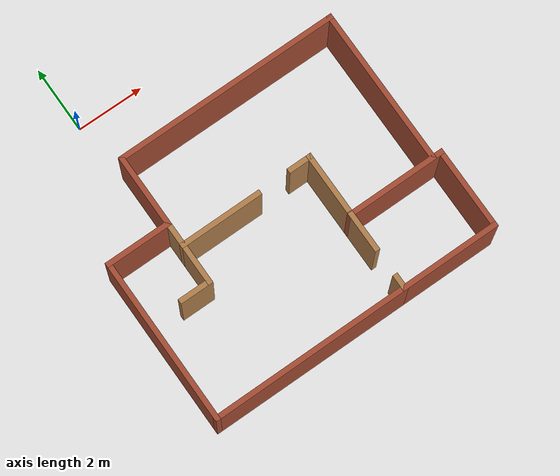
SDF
<?xml version='1.0'?>
<sdf version='1.6'>
  <model name='Room3'>
    <pose frame=''>2.75 -5.335 0 0 -0 0</pose>
    <link name='Wall_0'>
      <collision name='Wall_0_Collision'>
        <geometry>
          <box>
            <size>2.5 0.15 2.5</size>
          </box>
        </geometry>
        <pose frame=''>0 0 1.25 0 -0 0</pose>
      </collision>
      <visual name='Wall_0_Visual'>
        <pose frame=''>0 0 1.25 0 -0 0</pose>
        <geometry>
          <box>
            <size>2.5 0.15 2.5</size>
          </box>
        </geometry>
        <material>
          <script>
            <uri>file://media/materials/scripts/gazebo.material</uri>
            <name>Gazebo/Bricks</name>
          </script>
          <ambient>1 1 1 1</ambient>
        </material>
        <meta>
          <layer>0</layer>
        </meta>
      </visual>
      <pose frame=''>4.35 -2.3 0 0 -0 1.5708</pose>
    </link>
    <link name='Wall_1'>
      <collision name='Wall_1_Collision'>
        <geometry>
          <box>
            <size>3 0.15 2.5</size>
          </box>
        </geometry>
        <pose frame=''>0 0 1.25 0 -0 0</pose>
      </collision>
      <visual name='Wall_1_Visual'>
        <pose frame=''>0 0 1.25 0 -0 0</pose>
        <geometry>
          <box>
            <size>3 0.15 2.5</size>
          </box>
        </geometry>
        <material>
          <script>
            <uri>file://media/materials/scripts/gazebo.material</uri>
            <name>Gazebo/Bricks</name>
          </script>
          <ambient>1 1 1 1</ambient>
        </material>
        <meta>
          <layer>0</layer>
        </meta>
      </visual>
      <pose frame=''>2.925 -1.125 0 0 -0 3.14159</pose>
    </link>
    <link name='Wall_10'>
      <collision name='Wall_10_Collision'>
        <geometry>
          <box>
            <size>5 0.15 2.5</size>
          </box>
        </geometry>
        <pose frame=''>0 0 1.25 0 -0 0</pose>
      </collision>
      <visual name='Wall_10_Visual'>
        <pose frame=''>0 0 1.25 0 -0 0</pose>
        <geometry>
          <box>
            <size>5 0.15 2.5</size>
          </box>
        </geometry>
        <material>
          <script>
            <uri>file://media/materials/scripts/gazebo.material</uri>
            <name>Gazebo/Bricks</name>
          </script>
          <ambient>1 1 1 1</ambient>
        </material>
        <meta>
          <layer>0</layer>
        </meta>
      </visual>
      <pose frame=''>-4.35 -1.05 0 0 -0 1.5708</pose>
    </link>
    <link name='Wall_11'>
      <collision name='Wall_11_Collision'>
        <geometry>
          <box>
            <size>2 0.15 2.5</size>
          </box>
        </geometry>
        <pose frame=''>0 0 1.25 0 -0 0</pose>
      </collision>
      <visual name='Wall_11_Visual'>
        <pose frame=''>0 0 1.25 0 -0 0</pose>
        <geometry>
          <box>
            <size>2 0.15 2.5</size>
          </box>
        </geometry>
        <material>
          <script>
            <uri>file://media/materials/scripts/gazebo.material</uri>
            <name>Gazebo/Bricks</name>
          </script>
          <ambient>1 1 1 1</ambient>
        </material>
        <meta>
          <layer>0</layer>
        </meta>
      </visual>
      <pose frame=''>-3.425 1.375 0 0 -0 0</pose>
    </link>
    <link name='Wall_12'>
      <collision name='Wall_12_Collision'>
        <geometry>
          <box>
            <size>2 0.15 2.5</size>
          </box>
        </geometry>
        <pose frame=''>0 0 1.25 0 -0 0</pose>
      </collision>
      <visual name='Wall_12_Visual'>
        <pose frame=''>0 0 1.25 0 -0 0</pose>
        <geometry>
          <box>
            <size>2 0.15 2.5</size>
          </box>
        </geometry>
        <material>
          <script>
            <uri>file://media/materials/scripts/gazebo.material</uri>
            <name>Gazebo/Wood</name>
          </script>
          <ambient>1 1 1 1</ambient>
        </material>
        <meta>
          <layer>0</layer>
        </meta>
      </visual>
      <pose frame=''>-2.5 0.45 0 0 -0 -1.5708</pose>
    </link>
    <link name='Wall_13'>
      <collision name='Wall_13_Collision'>
        <geometry>
          <box>
            <size>1 0.15 2.5</size>
          </box>
        </geometry>
        <pose frame=''>0 0 1.25 0 -0 0</pose>
      </collision>
      <visual name='Wall_13_Visual'>
        <pose frame=''>0 0 1.25 0 -0 0</pose>
        <geometry>
          <box>
            <size>1 0.15 2.5</size>
          </box>
        </geometry>
        <material>
          <script>
            <uri>file://media/materials/scripts/gazebo.material</uri>
            <name>Gazebo/Wood</name>
          </script>
          <ambient>1 1 1 1</ambient>
        </material>
        <meta>
          <layer>0</layer>
        </meta>
      </visual>
      <pose frame=''>-2.925 -0.475 0 0 -0 3.14159</pose>
    </link>
    <link name='Wall_15'>
      <collision name='Wall_15_Collision'>
        <geometry>
          <box>
            <size>2.5 0.15 2.5</size>
          </box>
        </geometry>
        <pose frame=''>0 0 1.25 0 -0 0</pose>
      </collision>
      <visual name='Wall_15_Visual'>
        <pose frame=''>0 0 1.25 0 -0 0</pose>
        <geometry>
          <box>
            <size>2.5 0.15 2.5</size>
          </box>
        </geometry>
        <material>
          <script>
            <uri>file://media/materials/scripts/gazebo.material</uri>
            <name>Gazebo/Wood</name>
          </script>
          <ambient>1 1 1 1</ambient>
        </material>
        <meta>
          <layer>0</layer>
        </meta>
      </visual>
      <pose frame=''>-1.325 0.695 0 0 -0 0</pose>
    </link>
    <link name='Wall_20'>
      <collision name='Wall_20_Collision'>
        <geometry>
          <box>
            <size>2 0.15 2.5</size>
          </box>
        </geometry>
        <pose frame=''>0 0 1.25 0 -0 0</pose>
      </collision>
      <visual name='Wall_20_Visual'>
        <pose frame=''>0 0 1.25 0 -0 0</pose>
        <geometry>
          <box>
            <size>2 0.15 2.5</size>
          </box>
        </geometry>
        <material>
          <script>
            <uri>file://media/materials/scripts/gazebo.material</uri>
            <name>Gazebo/Wood</name>
          </script>
          <ambient>1 1 1 1</ambient>
        </material>
        <meta>
          <layer>0</layer>
        </meta>
      </visual>
      <pose frame=''>1.5 -0.2 0 0 -0 1.5708</pose>
    </link>
    <link name='Wall_21'>
      <collision name='Wall_21_Collision'>
        <geometry>
          <box>
            <size>0.75 0.15 2.5</size>
          </box>
        </geometry>
        <pose frame=''>0 0 1.25 0 -0 0</pose>
      </collision>
      <visual name='Wall_21_Visual'>
        <pose frame=''>0 0 1.25 0 -0 0</pose>
        <geometry>
          <box>
            <size>0.75 0.15 2.5</size>
          </box>
        </geometry>
        <material>
          <script>
            <uri>file://media/materials/scripts/gazebo.material</uri>
            <name>Gazebo/Wood</name>
          </script>
          <ambient>1 1 1 1</ambient>
        </material>
        <meta>
          <layer>0</layer>
        </meta>
      </visual>
      <pose frame=''>1.2 0.725 0 0 -0 3.14159</pose>
    </link>
    <link name='Wall_23'>
      <collision name='Wall_23_Collision'>
        <geometry>
          <box>
            <size>2.25 0.15 2.5</size>
          </box>
        </geometry>
        <pose frame=''>0 0 1.25 0 -0 0</pose>
      </collision>
      <visual name='Wall_23_Visual'>
        <pose frame=''>0 0 1.25 0 -0 0</pose>
        <geometry>
          <box>
            <size>2.25 0.15 2.5</size>
          </box>
        </geometry>
        <material>
          <script>
            <uri>file://media/materials/scripts/gazebo.material</uri>
            <name>Gazebo/Bricks</name>
          </script>
          <ambient>1 1 1 1</ambient>
        </material>
        <meta>
          <layer>0</layer>
        </meta>
      </visual>
      <pose frame=''>-2.5 2.425 0 0 -0 1.5708</pose>
    </link>
    <link name='Wall_24'>
      <collision name='Wall_24_Collision'>
        <geometry>
          <box>
            <size>6.75 0.15 2.5</size>
          </box>
        </geometry>
        <pose frame=''>0 0 1.25 0 -0 0</pose>
      </collision>
      <visual name='Wall_24_Visual'>
        <pose frame=''>0 0 1.25 0 -0 0</pose>
        <geometry>
          <box>
            <size>6.75 0.15 2.5</size>
          </box>
        </geometry>
        <material>
          <script>
            <uri>file://media/materials/scripts/gazebo.material</uri>
            <name>Gazebo/Bricks</name>
          </script>
          <ambient>1 1 1 1</ambient>
        </material>
        <meta>
          <layer>0</layer>
        </meta>
      </visual>
      <pose frame=''>0.8 3.475 0 0 -0 0</pose>
    </link>
    <link name='Wall_25'>
      <collision name='Wall_25_Collision'>
        <geometry>
          <box>
            <size>4.75 0.15 2.5</size>
          </box>
        </geometry>
        <pose frame=''>0 0 1.25 0 -0 0</pose>
      </collision>
      <visual name='Wall_25_Visual'>
        <pose frame=''>0 0 1.25 0 -0 0</pose>
        <geometry>
          <box>
            <size>4.75 0.15 2.5</size>
          </box>
        </geometry>
        <material>
          <script>
            <uri>file://media/materials/scripts/gazebo.material</uri>
            <name>Gazebo/Bricks</name>
          </script>
          <ambient>1 1 1 1</ambient>
        </material>
        <meta>
          <layer>0</layer>
        </meta>
      </visual>
      <pose frame=''>4.1 1.175 0 0 -0 -1.5708</pose>
    </link>
    <link name='Wall_4'>
      <collision name='Wall_4_Collision'>
        <geometry>
          <box>
            <size>3 0.15 2.5</size>
          </box>
        </geometry>
        <pose frame=''>0 0 1.25 0 -0 0</pose>
      </collision>
      <visual name='Wall_4_Visual'>
        <pose frame=''>0 0 1.25 0 -0 0</pose>
        <geometry>
          <box>
            <size>3 0.15 2.5</size>
          </box>
        </geometry>
        <material>
          <script>
            <uri>file://media/materials/scripts/gazebo.material</uri>
            <name>Gazebo/Bricks</name>
          </script>
          <ambient>1 1 1 1</ambient>
        </material>
        <meta>
          <layer>0</layer>
        </meta>
      </visual>
      <pose frame=''>2.925 -3.475 0 0 -0 3.14159</pose>
    </link>
    <link name='Wall_5'>
      <collision name='Wall_5_Collision'>
        <geometry>
          <box>
            <size>0.5 0.15 2.5</size>
          </box>
        </geometry>
        <pose frame=''>0 0 1.25 0 -0 0</pose>
      </collision>
      <visual name='Wall_5_Visual'>
        <pose frame=''>0 0 1.25 0 -0 0</pose>
        <geometry>
          <box>
            <size>0.5 0.15 2.5</size>
          </box>
        </geometry>
        <material>
          <script>
            <uri>file://media/materials/scripts/gazebo.material</uri>
            <name>Gazebo/Wood</name>
          </script>
          <ambient>1 1 1 1</ambient>
        </material>
        <meta>
          <layer>0</layer>
        </meta>
      </visual>
      <pose frame=''>1.5 -3.3 0 0 -0 1.5708</pose>
    </link>
    <link name='Wall_7'>
      <collision name='Wall_7_Collision'>
        <geometry>
          <box>
            <size>1.25 0.15 2.5</size>
          </box>
        </geometry>
        <pose frame=''>0 0 1.25 0 -0 0</pose>
      </collision>
      <visual name='Wall_7_Visual'>
        <pose frame=''>0 0 1.25 0 -0 0</pose>
        <geometry>
          <box>
            <size>1.25 0.15 2.5</size>
          </box>
        </geometry>
        <material>
          <script>
            <uri>file://media/materials/scripts/gazebo.material</uri>
            <name>Gazebo/Wood</name>
          </script>
          <ambient>1 1 1 1</ambient>
        </material>
        <meta>
          <layer>0</layer>
        </meta>
      </visual>
      <pose frame=''>1.5 -1.675 0 0 -0 -1.5708</pose>
    </link>
    <link name='Wall_9'>
      <collision name='Wall_9_Collision'>
        <geometry>
          <box>
            <size>6 0.15 2.5</size>
          </box>
        </geometry>
        <pose frame=''>0 0 1.25 0 -0 0</pose>
      </collision>
      <visual name='Wall_9_Visual'>
        <pose frame=''>0 0 1.25 0 -0 0</pose>
        <geometry>
          <box>
            <size>6 0.15 2.5</size>
          </box>
        </geometry>
        <material>
          <script>
            <uri>file://media/materials/scripts/gazebo.material</uri>
            <name>Gazebo/Bricks</name>
          </script>
          <ambient>1 1 1 1</ambient>
        </material>
        <meta>
          <layer>0</layer>
        </meta>
      </visual>
      <pose frame=''>-1.425 -3.475 0 0 -0 3.14159</pose>
    </link>
    <static>1</static>
  </model>
</sdf>
